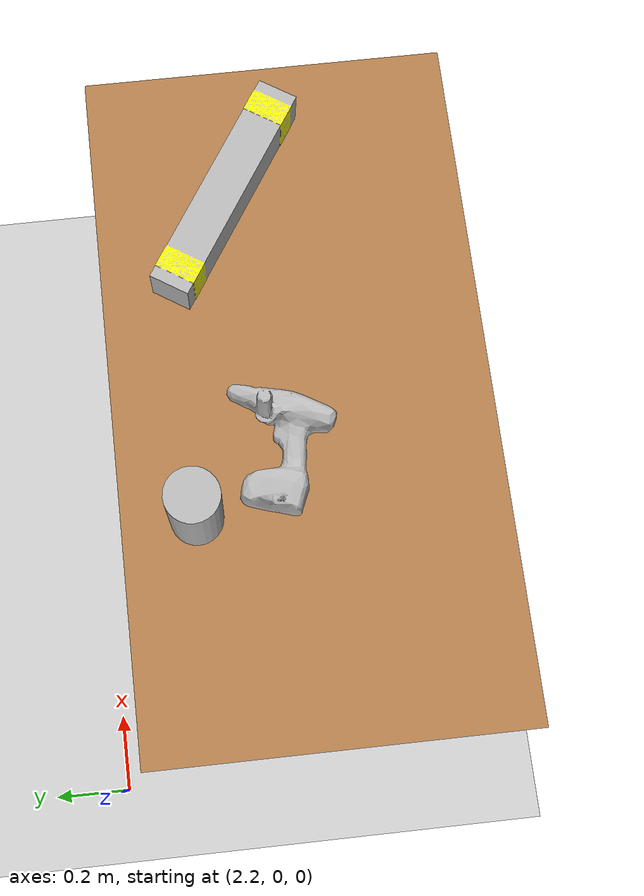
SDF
<sdf version="1.4">
 <world name="default">
  <model name="ground_plane">
   <static>1</static>
   <link name="link">
    <collision name="collision">
     <geometry><plane><normal>0 0 1</normal><size>100 100</size></plane></geometry>
     <surface><friction><ode><mu>100</mu><mu2>50</mu2></ode></friction></surface>
    </collision>
    <visual name="visual">
     <cast_shadows>0</cast_shadows>
     <geometry><plane><normal>0 0 1</normal><size>100 100</size></plane></geometry>
     <material>
      <script><uri>file://media/materials/scripts/gazebo.material</uri><name>Gazebo/Grey</name></script>
     </material>
    </visual>
    <velocity_decay><linear>0</linear><angular>0</angular></velocity_decay>
   </link>
  </model>
  <model name="table">
   <static>1</static>
   <link name="link">
    <collision name="surface">
     <pose>0 0 1 0 -0 0</pose>
     <geometry><box><size>1.5 0.8 0.03</size></box></geometry>
    </collision>
    <visual name="visual1">
     <pose>0 0 1 0 -0 0</pose>
     <geometry><box><size>1.5 0.8 0.03</size></box></geometry>
     <material>
      <script><uri>file://media/materials/scripts/gazebo.material</uri><name>Gazebo/Wood</name></script>
     </material>
    </visual>
    <collision name="front_left_leg">
     <pose>0.68 0.38 0.5 0 -0 0</pose>
     <geometry><cylinder><radius>0.02</radius><length>1</length></cylinder></geometry>
    </collision>
    <visual name="front_left_leg">
     <pose>0.68 0.38 0.5 0 -0 0</pose>
     <geometry><cylinder><radius>0.02</radius><length>1</length></cylinder></geometry>
     <material>
      <script><uri>file://media/materials/scripts/gazebo.material</uri><name>Gazebo/Grey</name></script>
     </material>
    </visual>
    <collision name="front_right_leg">
     <pose>0.68 -0.38 0.5 0 -0 0</pose>
     <geometry><cylinder><radius>0.02</radius><length>1</length></cylinder></geometry>
    </collision>
    <visual name="front_right_leg">
     <pose>0.68 -0.38 0.5 0 -0 0</pose>
     <geometry><cylinder><radius>0.02</radius><length>1</length></cylinder></geometry>
     <material>
      <script><uri>file://media/materials/scripts/gazebo.material</uri><name>Gazebo/Grey</name></script>
     </material>
    </visual>
    <collision name="back_right_leg">
     <pose>-0.68 -0.38 0.5 0 -0 0</pose>
     <geometry><cylinder><radius>0.02</radius><length>1</length></cylinder></geometry>
    </collision>
    <visual name="back_right_leg">
     <pose>-0.68 -0.38 0.5 0 -0 0</pose>
     <geometry><cylinder><radius>0.02</radius><length>1</length></cylinder></geometry>
     <material>
      <script><uri>file://media/materials/scripts/gazebo.material</uri><name>Gazebo/Grey</name></script>
     </material>
    </visual>
    <collision name="back_left_leg">
     <pose>-0.68 0.38 0.5 0 -0 0</pose>
     <geometry><cylinder><radius>0.02</radius><length>1</length></cylinder></geometry>
    </collision>
    <visual name="back_left_leg">
     <pose>-0.68 0.38 0.5 0 -0 0</pose>
     <geometry><cylinder><radius>0.02</radius><length>1</length></cylinder></geometry>
     <material>
      <script><uri>file://media/materials/scripts/gazebo.material</uri><name>Gazebo/Grey</name></script>
     </material>
    </visual>
    <velocity_decay><linear>0</linear><angular>0</angular></velocity_decay>
   </link>
   <pose>3 -0.53098 0 0 -0 0</pose>
  </model>
  <model name="lumber_4x4x20">
   <link name="link">
    <inertial>
     <mass>1.37</mass>
     <inertia><ixx>0.0018</ixx><ixy>0</ixy><ixz>0</ixz><iyy>0.0303</iyy><iyz>0</iyz><izz>0.0303</izz></inertia>
    </inertial>
    <collision name="collision">
     <geometry><box><size>0.508 0.0888 0.0888</size></box></geometry>
     <surface>
      <bounce><restitution_coefficient>0</restitution_coefficient><threshold>2</threshold></bounce>
      <friction><ode><mu>10</mu><mu2>10</mu2></ode></friction>
      <contact><ode><soft_cfm>0.001</soft_cfm><kp>100000</kp><kd>1000</kd></ode></contact>
     </surface>
    </collision>
    <visual name="visual">
     <geometry><mesh><uri>model://drc_practice_4x4x20/meshes/4x4x20.dae</uri></mesh></geometry>
    </visual>
    <velocity_decay><linear>0</linear><angular>0</angular></velocity_decay>
   </link>
   <pose>3.42907 -0.416043 1.05937 -3.14159 -0 2.5685</pose>
   <static>0</static>
  </model>
  <model name="coke_can_0">
   <link name="link">
    <inertial>
     <pose>-0.01 -0.012 0.15 0 -0 0</pose>
     <mass>0.39</mass>
     <inertia><ixx>0.00058</ixx><ixy>0</ixy><ixz>0</ixz><iyy>0.00058</iyy><iyz>0</iyz><izz>0.00019</izz></inertia>
    </inertial>
    <collision name="collision">
     <pose>0 0 -0.46 0 -0 0</pose>
     <geometry><mesh><uri>model://coke_can/meshes/coke_can.dae</uri></mesh></geometry>
     <surface>
      <friction><ode><mu>1</mu><mu2>1</mu2></ode></friction>
      <contact><ode><kp>1e+07</kp><kd>1</kd><min_depth>0.001</min_depth><max_vel>0.1</max_vel></ode></contact>
     </surface>
    </collision>
    <visual name="visual">
     <pose>0 0 -0.46 0 -0 0</pose>
     <geometry><mesh><uri>model://coke_can/meshes/coke_can.dae</uri></mesh></geometry>
    </visual>
    <velocity_decay><linear>0</linear><angular>0</angular></velocity_decay>
   </link>
   <pose>2.64542 -0.689602 1.01119 -0.000374 0.000132 -0.012852</pose>
   <static>0</static>
  </model>
  <model name="drill">
   <link name="link">
    <inertial>
     <pose>-0.00637 -0.008 0.13254 0 -0 0</pose>
     <inertia>
      <ixx>0.0133113</ixx>
      <ixy>-0.00030365</ixy>
      <ixz>-0.00034148</ixz>
      <iyy>0.0115766</iyy>
      <iyz>0.00088073</iyz>
      <izz>0.00378028</izz>
     </inertia>
     <mass>1.50252</mass>
    </inertial>
    <collision name="collision">
     <pose>0 0 -0.09 0 -0 0</pose>
     <geometry><mesh><uri>model://cordless_drill/meshes/cordless_drill.stl</uri></mesh></geometry>
     <surface><contact><ode><max_vel>0.1</max_vel><min_depth>0.001</min_depth></ode></contact></surface>
    </collision>
    <visual name="visual">
     <pose>0 0 -0.09 0 -0 0</pose>
     <geometry><mesh><uri>model://cordless_drill/meshes/cordless_drill.dae</uri></mesh></geometry>
    </visual>
    <velocity_decay><linear>0</linear><angular>0</angular></velocity_decay>
   </link>
   <pose>2.7306 -0.430426 1.04801 -1.51966 1.48523 -1.80325</pose>
   <static>0</static>
  </model>
  <model name="beer_0">
   <link name="link">
    <pose>0 0 0.115 0 -0 0</pose>
    <inertial>
     <mass>0.39</mass>
     <inertia><ixx>0.00058</ixx><ixy>0</ixy><ixz>0</ixz><iyy>0.00058</iyy><iyz>0</iyz><izz>0.00019</izz></inertia>
    </inertial>
    <collision name="collision">
     <geometry><cylinder><radius>0.055</radius><length>0.23</length></cylinder></geometry>
    </collision>
    <visual name="visual">
     <geometry><cylinder><radius>0.055</radius><length>0.23</length></cylinder></geometry>
     <material>
      <script>
       <uri>model://beer/materials/scripts</uri>
       <uri>model://beer/materials/textures</uri>
       <name>Beer/Diffuse</name>
      </script>
     </material>
    </visual>
    <velocity_decay><linear>0</linear><angular>0</angular></velocity_decay>
   </link>
   <pose>2.73667 -0.287879 1.015 1.7e-05 -4e-06 0.000254</pose>
   <static>0</static>
  </model>
 </world>
</sdf>
